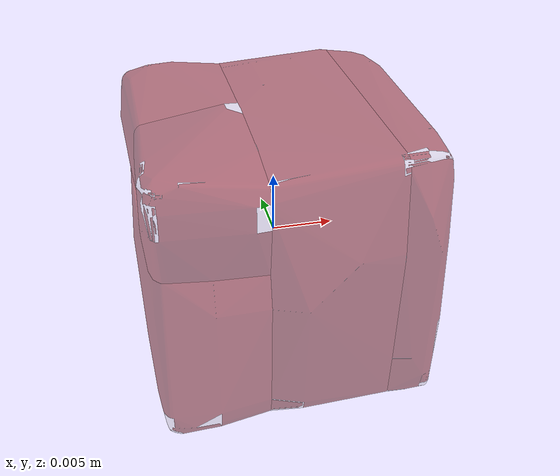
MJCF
<mujoco model="model">
  <compiler angle="radian"/>
  <asset>
    <mesh file="visual/IceCube005.obj" name="IceCube005_vis"/>
    <texture file="visual/T_BC001.png" name="IceCube005_material" type="2d"/>
    <material name="IceCube005_material" rgba="1 1 1 0.23636364936828613" texture="IceCube005_material" shininess="0.7000000476837158" specular="0.3103448502657381"/>
    <mesh file="collision/collision_mesh_collision_0.obj" name="IceCube005_collision_mesh_0"/>
    <mesh file="collision/collision_mesh_collision_1.obj" name="IceCube005_collision_mesh_1"/>
    <mesh file="collision/collision_mesh_collision_2.obj" name="IceCube005_collision_mesh_2"/>
    <mesh file="collision/collision_mesh_collision_3.obj" name="IceCube005_collision_mesh_3"/>
    <mesh file="collision/collision_mesh_collision_4.obj" name="IceCube005_collision_mesh_4"/>
  </asset>
  <default>
    <default class="visual">
      <geom conaffinity="0" contype="0" group="1" type="mesh"/>
    </default>
    <default class="collision">
      <geom group="0" rgba="0.5 0 0 0.5"/>
    </default>
    <default class="spawn">
      <geom group="0" rgba="1 1 1 0.5" contype="0" conaffinity="0"/>
      <site group="0" rgba="1 1 1 0.5"/>
    </default>
    <default class="region">
      <geom group="1" conaffinity="0" contype="0" rgba="0 1 0 0" mass="0"/>
    </default>
  </default>
  <worldbody>
    <body>
      <body name="object">
        <geom mesh="IceCube005_vis" type="mesh" solimp="0.998 0.998 0.001" solref="0.001 1" density="100" friction="0.95 0.3 0.1" class="visual" material="IceCube005_material"/>
        <geom class="region" name="reg_bbox" type="box" pos="-2.099999999996202e-07 0.0 -4.350000000000187e-07" size="0.011582789999999999 0.012064 0.011587565"/>
        <geom mesh="IceCube005_collision_mesh_0" type="mesh" class="collision"/>
        <geom mesh="IceCube005_collision_mesh_1" type="mesh" class="collision"/>
        <geom mesh="IceCube005_collision_mesh_2" type="mesh" class="collision"/>
        <geom mesh="IceCube005_collision_mesh_3" type="mesh" class="collision"/>
        <geom mesh="IceCube005_collision_mesh_4" type="mesh" class="collision"/>
      </body>
    </body>
  </worldbody>
  <actuator/>
</mujoco>
